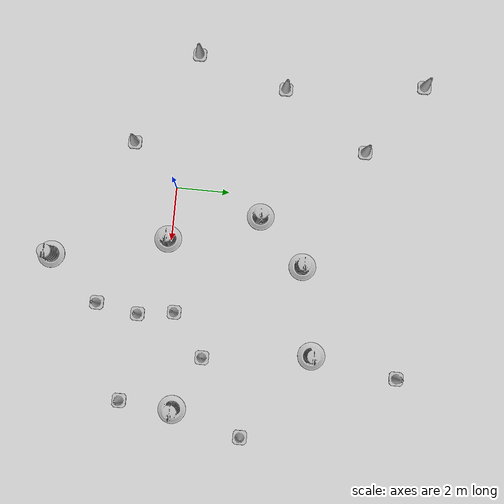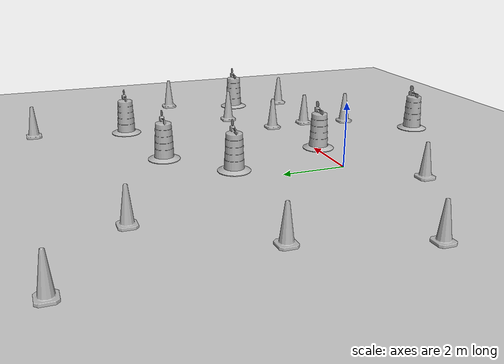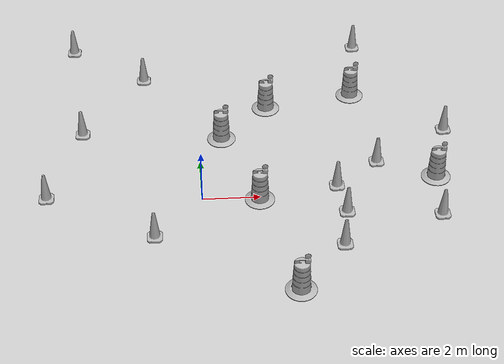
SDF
<sdf version="1.7">
 <world name="default">
  <light name="sun" type="directional">
   <pose>0 0 10 0 -0 0</pose>
   <diffuse>0.8 0.8 0.8 1</diffuse>
   <specular>0.2 0.2 0.2 1</specular>
   <attenuation>
    <range>1000</range>
    <constant>0.9</constant>
    <linear>0.01</linear>
    <quadratic>0.001</quadratic>
   </attenuation>
   <direction>-0.5 0.1 -0.9</direction>
   <spot><inner_angle>0</inner_angle><outer_angle>0</outer_angle><falloff>0</falloff></spot>
  </light>
  <model name="ground_plane">
   <static>1</static>
   <link name="link">
    <collision name="collision">
     <geometry><plane><normal>0 0 1</normal><size>100 100</size></plane></geometry>
     <surface>
      <contact><collide_bitmask>65535</collide_bitmask></contact>
      <friction><ode><mu>100</mu><mu2>50</mu2></ode></friction>
     </surface>
    </collision>
    <visual name="visual">
     <cast_shadows>0</cast_shadows>
     <geometry><plane><normal>0 0 1</normal><size>100 100</size></plane></geometry>
     <material>
      <script><uri>file://media/materials/scripts/gazebo.material</uri><name>Gazebo/Grey</name></script>
     </material>
    </visual>
   </link>
  </model>
  <gravity>0 0 -9.8</gravity>
  <magnetic_field>6e-06 2.3e-05 -4.2e-05</magnetic_field>
  <atmosphere type="adiabatic"/>
  <physics type="ode">
   <max_step_size>0.001</max_step_size>
   <real_time_factor>1</real_time_factor>
   <real_time_update_rate>1000</real_time_update_rate>
  </physics>
  <scene><ambient>0.4 0.4 0.4 1</ambient><background>0.7 0.7 0.7 1</background><shadows>1</shadows></scene>
  <audio><device>default</device></audio>
  <spherical_coordinates>
   <surface_model>EARTH_WGS84</surface_model>
   <latitude_deg>0</latitude_deg>
   <longitude_deg>0</longitude_deg>
   <elevation>0</elevation>
   <heading_deg>0</heading_deg>
  </spherical_coordinates>
  <model name="Construction Barrel">
   <link name="link">
    <inertial>
     <pose>0 0 0.4 0 -0 0</pose>
     <mass>500</mass>
     <inertia><ixx>51.2096</ixx><iyy>51.2096</iyy><izz>25</izz><ixy>0</ixy><ixz>0</ixz><iyz>0</iyz></inertia>
    </inertial>
    <collision name="collision">
     <geometry><mesh><uri>model://construction_barrel/meshes/construction_barrel.dae</uri></mesh></geometry>
    </collision>
    <visual name="visual">
     <geometry><mesh><uri>model://construction_barrel/meshes/construction_barrel.dae</uri></mesh></geometry>
    </visual>
   </link>
   <pose>1.95892 -0.129777 -1e-06 -8e-06 -2e-06 -2.5e-05</pose>
  </model>
  <model name="Construction Barrel_0">
   <link name="link">
    <inertial>
     <pose>0 0 0.4 0 -0 0</pose>
     <mass>500</mass>
     <inertia><ixx>51.2096</ixx><iyy>51.2096</iyy><izz>25</izz><ixy>0</ixy><ixz>0</ixz><iyz>0</iyz></inertia>
    </inertial>
    <collision name="collision">
     <geometry><mesh><uri>model://construction_barrel/meshes/construction_barrel.dae</uri></mesh></geometry>
    </collision>
    <visual name="visual">
     <geometry><mesh><uri>model://construction_barrel/meshes/construction_barrel.dae</uri></mesh></geometry>
    </visual>
   </link>
   <pose>0.812127 3.24895 -3e-06 -0 -1.2e-05 -2.6e-05</pose>
  </model>
  <model name="Construction Barrel_1">
   <link name="link">
    <inertial>
     <pose>0 0 0.4 0 -0 0</pose>
     <mass>500</mass>
     <inertia><ixx>51.2096</ixx><iyy>51.2096</iyy><izz>25</izz><ixy>0</ixy><ixz>0</ixz><iyz>0</iyz></inertia>
    </inertial>
    <collision name="collision">
     <geometry><mesh><uri>model://construction_barrel/meshes/construction_barrel.dae</uri></mesh></geometry>
    </collision>
    <visual name="visual">
     <geometry><mesh><uri>model://construction_barrel/meshes/construction_barrel.dae</uri></mesh></geometry>
    </visual>
   </link>
   <pose>2.55573 4.96403 -1e-06 0 5e-06 -2.5e-05</pose>
  </model>
  <model name="Construction Cone">
   <link name="link">
    <collision name="collision">
     <geometry>
      <mesh><scale>10 10 10</scale><uri>model://construction_cone/meshes/construction_cone.dae</uri></mesh>
     </geometry>
    </collision>
    <visual name="visual">
     <geometry>
      <mesh><scale>10 10 10</scale><uri>model://construction_cone/meshes/construction_cone.dae</uri></mesh>
     </geometry>
    </visual>
    <inertial>
     <inertia><ixx>1</ixx><ixy>0</ixy><ixz>0</ixz><iyy>1</iyy><iyz>0</iyz><izz>1</izz></inertia>
     <mass>1</mass>
    </inertial>
   </link>
   <pose>4.66561 0.371932 -0 1e-06 -0 0</pose>
  </model>
  <model name="Construction Cone_0">
   <link name="link">
    <collision name="collision">
     <geometry>
      <mesh><scale>10 10 10</scale><uri>model://construction_cone/meshes/construction_cone.dae</uri></mesh>
     </geometry>
    </collision>
    <visual name="visual">
     <geometry>
      <mesh><scale>10 10 10</scale><uri>model://construction_cone/meshes/construction_cone.dae</uri></mesh>
     </geometry>
    </visual>
    <inertial>
     <inertia><ixx>1</ixx><ixy>0</ixy><ixz>0</ixz><iyy>1</iyy><iyz>0</iyz><izz>1</izz></inertia>
     <mass>1</mass>
    </inertial>
   </link>
   <pose>8.03052 -1.30838 -1e-05 0 -0 0</pose>
  </model>
  <model name="Construction Cone_1">
   <link name="link">
    <collision name="collision">
     <geometry>
      <mesh><scale>10 10 10</scale><uri>model://construction_cone/meshes/construction_cone.dae</uri></mesh>
     </geometry>
    </collision>
    <visual name="visual">
     <geometry>
      <mesh><scale>10 10 10</scale><uri>model://construction_cone/meshes/construction_cone.dae</uri></mesh>
     </geometry>
    </visual>
    <inertial>
     <inertia><ixx>1</ixx><ixy>0</ixy><ixz>0</ixz><iyy>1</iyy><iyz>0</iyz><izz>1</izz></inertia>
     <mass>1</mass>
    </inertial>
   </link>
   <pose>6.22383 1.54966 -4e-06 4e-06 -1e-06 0</pose>
  </model>
  <model name="Construction Cone_2">
   <link name="link">
    <collision name="collision">
     <geometry>
      <mesh><scale>10 10 10</scale><uri>model://construction_cone/meshes/construction_cone.dae</uri></mesh>
     </geometry>
    </collision>
    <visual name="visual">
     <geometry>
      <mesh><scale>10 10 10</scale><uri>model://construction_cone/meshes/construction_cone.dae</uri></mesh>
     </geometry>
    </visual>
    <inertial>
     <inertia><ixx>1</ixx><ixy>0</ixy><ixz>0</ixz><iyy>1</iyy><iyz>0</iyz><izz>1</izz></inertia>
     <mass>1</mass>
    </inertial>
   </link>
   <pose>4.56375 -2.52356 0 0 -0 0</pose>
  </model>
  <model name="Construction Barrel_2">
   <link name="link">
    <inertial>
     <pose>0 0 0.4 0 -0 0</pose>
     <mass>500</mass>
     <inertia><ixx>51.2096</ixx><iyy>51.2096</iyy><izz>25</izz><ixy>0</ixy><ixz>0</ixz><iyz>0</iyz></inertia>
    </inertial>
    <collision name="collision">
     <geometry><mesh><uri>model://construction_barrel/meshes/construction_barrel.dae</uri></mesh></geometry>
    </collision>
    <visual name="visual">
     <geometry><mesh><uri>model://construction_barrel/meshes/construction_barrel.dae</uri></mesh></geometry>
    </visual>
   </link>
   <pose>5.80445 5.55091 -2e-06 7e-06 -2e-06 -2.1e-05</pose>
  </model>
  <model name="Construction Cone_3">
   <link name="link">
    <collision name="collision">
     <geometry>
      <mesh><scale>10 10 10</scale><uri>model://construction_cone/meshes/construction_cone.dae</uri></mesh>
     </geometry>
    </collision>
    <visual name="visual">
     <geometry>
      <mesh><scale>10 10 10</scale><uri>model://construction_cone/meshes/construction_cone.dae</uri></mesh>
     </geometry>
    </visual>
    <inertial>
     <inertia><ixx>1</ixx><ixy>0</ixy><ixz>0</ixz><iyy>1</iyy><iyz>0</iyz><izz>1</izz></inertia>
     <mass>1</mass>
    </inertial>
   </link>
   <pose>4.84177 -0.973372 -0 0 -0 0</pose>
  </model>
  <model name="Construction Cone_4">
   <link name="link">
    <collision name="collision">
     <geometry>
      <mesh><scale>10 10 10</scale><uri>model://construction_cone/meshes/construction_cone.dae</uri></mesh>
     </geometry>
    </collision>
    <visual name="visual">
     <geometry>
      <mesh><scale>10 10 10</scale><uri>model://construction_cone/meshes/construction_cone.dae</uri></mesh>
     </geometry>
    </visual>
    <inertial>
     <inertia><ixx>1</ixx><ixy>0</ixy><ixz>0</ixz><iyy>1</iyy><iyz>0</iyz><izz>1</izz></inertia>
     <mass>1</mass>
    </inertial>
   </link>
   <pose>6.34447 8.69868 -0 0 -0 0</pose>
  </model>
  <model name="Construction Cone_5">
   <link name="link">
    <collision name="collision">
     <geometry>
      <mesh><scale>10 10 10</scale><uri>model://construction_cone/meshes/construction_cone.dae</uri></mesh>
     </geometry>
    </collision>
    <visual name="visual">
     <geometry>
      <mesh><scale>10 10 10</scale><uri>model://construction_cone/meshes/construction_cone.dae</uri></mesh>
     </geometry>
    </visual>
    <inertial>
     <inertia><ixx>1</ixx><ixy>0</ixy><ixz>0</ixz><iyy>1</iyy><iyz>0</iyz><izz>1</izz></inertia>
     <mass>1</mass>
    </inertial>
   </link>
   <pose>8.94041 3.19334 -4e-06 4e-06 -1e-06 0</pose>
  </model>
  <model name="Construction Barrel_3">
   <link name="link">
    <inertial>
     <pose>0 0 0.4 0 -0 0</pose>
     <mass>500</mass>
     <inertia><ixx>51.2096</ixx><iyy>51.2096</iyy><izz>25</izz><ixy>0</ixy><ixz>0</ixz><iyz>0</iyz></inertia>
    </inertial>
    <collision name="collision">
     <geometry><mesh><uri>model://construction_barrel/meshes/construction_barrel.dae</uri></mesh></geometry>
    </collision>
    <visual name="visual">
     <geometry><mesh><uri>model://construction_barrel/meshes/construction_barrel.dae</uri></mesh></geometry>
    </visual>
   </link>
   <pose>8.17428 0.641163 -1e-06 3e-06 1e-05 -1.4e-05</pose>
  </model>
  <model name="Construction Cone_6">
   <link name="link">
    <collision name="collision">
     <geometry>
      <mesh><scale>10 10 10</scale><uri>model://construction_cone/meshes/construction_cone.dae</uri></mesh>
     </geometry>
    </collision>
    <visual name="visual">
     <geometry>
      <mesh><scale>10 10 10</scale><uri>model://construction_cone/meshes/construction_cone.dae</uri></mesh>
     </geometry>
    </visual>
    <inertial>
     <inertia><ixx>1</ixx><ixy>0</ixy><ixz>0</ixz><iyy>1</iyy><iyz>0</iyz><izz>1</izz></inertia>
     <mass>1</mass>
    </inertial>
   </link>
   <pose>-1.62109 -1.76364 -0 -0 -0 -0</pose>
  </model>
  <model name="Construction Cone_7">
   <link name="link">
    <collision name="collision">
     <geometry>
      <mesh><scale>10 10 10</scale><uri>model://construction_cone/meshes/construction_cone.dae</uri></mesh>
     </geometry>
    </collision>
    <visual name="visual">
     <geometry>
      <mesh><scale>10 10 10</scale><uri>model://construction_cone/meshes/construction_cone.dae</uri></mesh>
     </geometry>
    </visual>
    <inertial>
     <inertia><ixx>1</ixx><ixy>0</ixy><ixz>0</ixz><iyy>1</iyy><iyz>0</iyz><izz>1</izz></inertia>
     <mass>1</mass>
    </inertial>
   </link>
   <pose>-4.76162 9.08667 -0 0 -1e-06 0</pose>
  </model>
  <model name="Construction Cone_8">
   <link name="link">
    <collision name="collision">
     <geometry>
      <mesh><scale>10 10 10</scale><uri>model://construction_cone/meshes/construction_cone.dae</uri></mesh>
     </geometry>
    </collision>
    <visual name="visual">
     <geometry>
      <mesh><scale>10 10 10</scale><uri>model://construction_cone/meshes/construction_cone.dae</uri></mesh>
     </geometry>
    </visual>
    <inertial>
     <inertia><ixx>1</ixx><ixy>0</ixy><ixz>0</ixz><iyy>1</iyy><iyz>0</iyz><izz>1</izz></inertia>
     <mass>1</mass>
    </inertial>
   </link>
   <pose>-5.29711 0.36308 -4e-06 4e-06 -0 0</pose>
  </model>
  <model name="Construction Barrel_4">
   <link name="link">
    <inertial>
     <pose>0 0 0.4 0 -0 0</pose>
     <mass>500</mass>
     <inertia><ixx>51.2096</ixx><iyy>51.2096</iyy><izz>25</izz><ixy>0</ixy><ixz>0</ixz><iyz>0</iyz></inertia>
    </inertial>
    <collision name="collision">
     <geometry><mesh><uri>model://construction_barrel/meshes/construction_barrel.dae</uri></mesh></geometry>
    </collision>
    <visual name="visual">
     <geometry><mesh><uri>model://construction_barrel/meshes/construction_barrel.dae</uri></mesh></geometry>
    </visual>
   </link>
   <pose>2.92319 -4.4265 -2e-06 7e-06 -2e-06 -8e-06</pose>
  </model>
  <model name="Construction Cone_9">
   <link name="link">
    <collision name="collision">
     <geometry>
      <mesh><scale>10 10 10</scale><uri>model://construction_cone/meshes/construction_cone.dae</uri></mesh>
     </geometry>
    </collision>
    <visual name="visual">
     <geometry>
      <mesh><scale>10 10 10</scale><uri>model://construction_cone/meshes/construction_cone.dae</uri></mesh>
     </geometry>
    </visual>
    <inertial>
     <inertia><ixx>1</ixx><ixy>0</ixy><ixz>0</ixz><iyy>1</iyy><iyz>0</iyz><izz>1</izz></inertia>
     <mass>1</mass>
    </inertial>
   </link>
   <pose>-4.20904 3.7934 -0 0 -0 0</pose>
  </model>
  <model name="Construction Cone_10">
   <link name="link">
    <collision name="collision">
     <geometry>
      <mesh><scale>10 10 10</scale><uri>model://construction_cone/meshes/construction_cone.dae</uri></mesh>
     </geometry>
    </collision>
    <visual name="visual">
     <geometry>
      <mesh><scale>10 10 10</scale><uri>model://construction_cone/meshes/construction_cone.dae</uri></mesh>
     </geometry>
    </visual>
    <inertial>
     <inertia><ixx>1</ixx><ixy>0</ixy><ixz>0</ixz><iyy>1</iyy><iyz>0</iyz><izz>1</izz></inertia>
     <mass>1</mass>
    </inertial>
   </link>
   <pose>-2 7 -0 0 -1e-06 0</pose>
  </model>
 </world>
</sdf>
